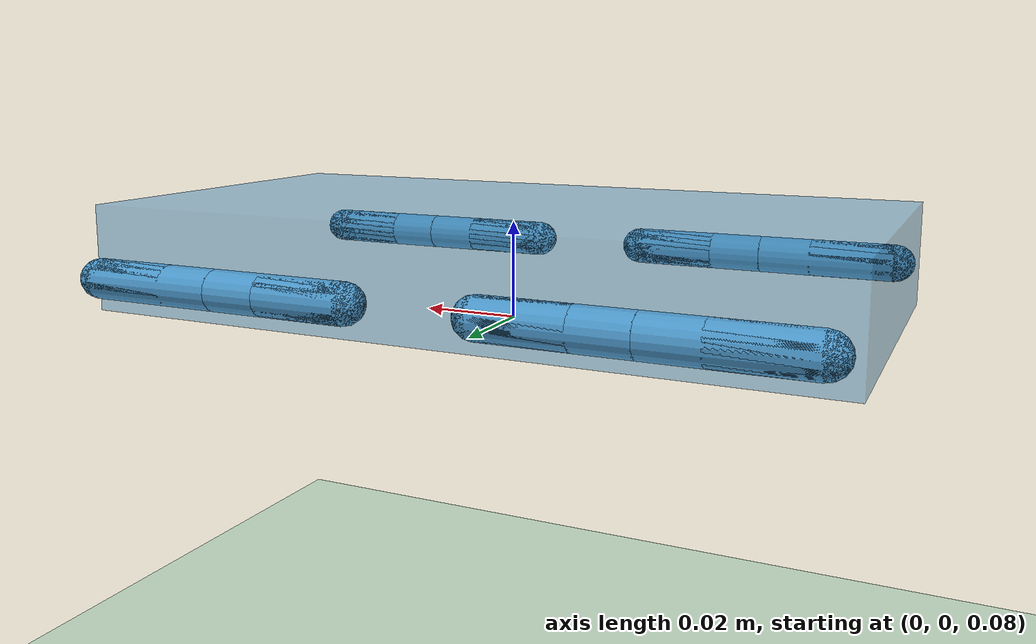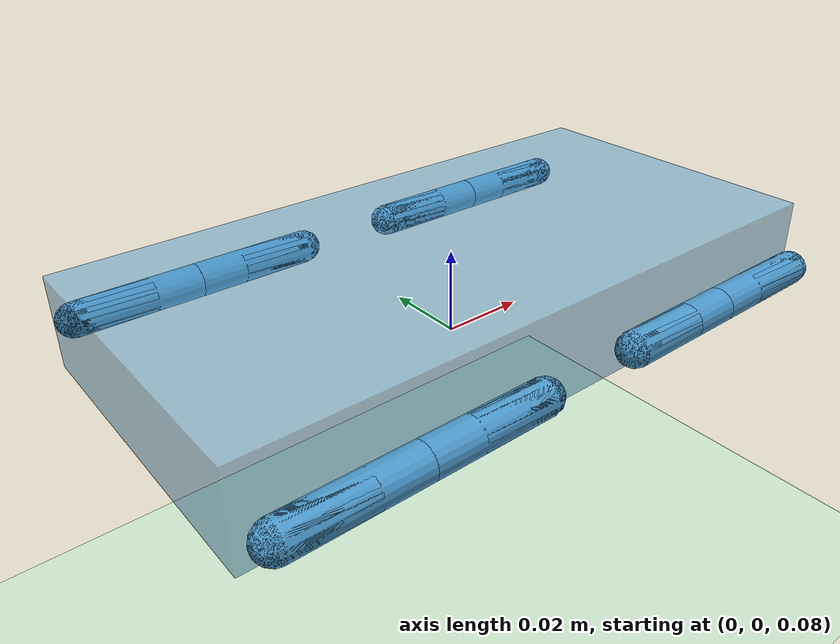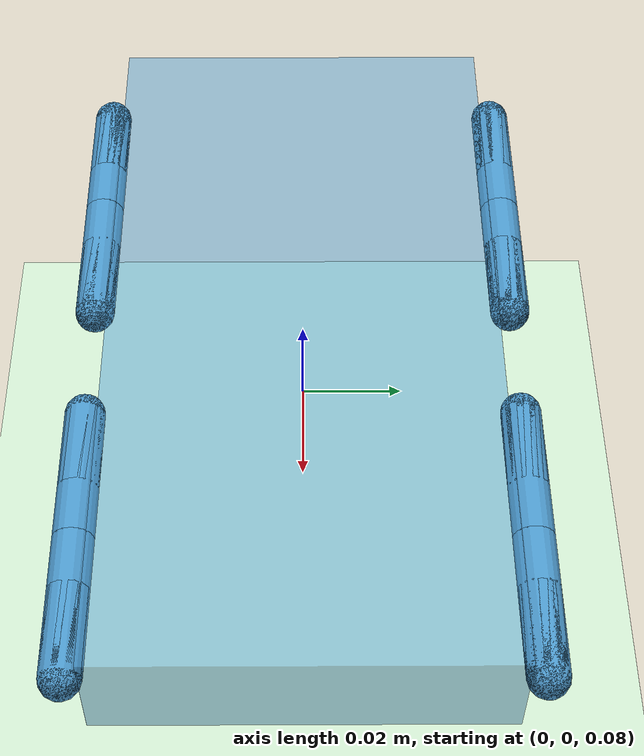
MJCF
<mujoco model="phonebot">
	<!-- enumeration of constant model parameters -->

	<!-- everything at 1x scale -->
	<compiler angle="radian" coordinate="local" inertiafromgeom="true"/>
	<option integrator="RK4" timestep="0.001618" gravity="0 0 -9.81" iterations='100000'/>

	<visual>
		<map znear="0.01"/>
	</visual>

	<default>
		<!-- armature = rotor inertia ; damping = F(damp) = c_d.v -->
		<joint armature="0.01" damping="0.01" limited="true"/>
		<geom conaffinity="0" condim="3" density="250.0" friction="1 0.5 0.5" margin="0.001" rgba="0.3 0.6 0.8 1.0"/>
	</default>

	<asset>
		<texture builtin="gradient" height="100" rgb1="1 1 1" rgb2="0 0 0" type="skybox" width="100"/>
		<texture builtin="flat" height="1278" mark="cross" markrgb="1 1 1" name="texgeom" random="0.01" rgb1="0.8 0.6 0.4" rgb2="0.8 0.6 0.4" type="cube" width="127"/>
		<texture builtin="checker" height="100" name="texplane" rgb1="0 0 0" rgb2="0.8 0.8 0.8" type="2d" width="100"/>
		<material name="MatPlane" reflectance="0.5" shininess="1" specular="1" texrepeat="60 60" texture="texplane"/>
		<material name="geom" texture="texgeom" texuniform="true"/>
	</asset>

	<worldbody>
		<light cutoff="100" diffuse="1 1 1" dir="-0 0 -1.3" directional="true" exponent="1" pos="0 0 1.3" specular=".1 .1 .1"/>
		<geom conaffinity="1" condim="3" material="MatPlane" name="floor" pos="0 0 0" rgba="0.8 0.9 0.8 1" size="10 10 10" type="plane"/>

		<body name="phone" pos="0 0 .1">
			<!-- root (dummy?) -->

			<!-- UNCOMMENT TO ADD GRAVITY -->
			<joint armature="0" damping="0" limited="false" margin="0.001" name="root" pos="0 0 0" type="free"/>

			<!-- main phone -->
			<geom name="phone_geom" pos="0 0 -0.00706" size="0.075 0.038175 0.010806" type="box" density="557.55" rgba="0.3 0.6 0.8 0.5"/>

			<!-- stoppers -->
			<geom name="fl_stop" pos="0.041418 0.0425 -0.010148" size="0.004" type="sphere"/>
			<geom name="fr_stop" pos="0.041418 -0.0425 -0.010148" size="0.004" type="sphere"/>
			<geom name="bl_stop" pos="-0.041418 0.0425 -0.010148" size="0.004" type="sphere"/>
			<geom name="br_stop" pos="-0.041418 -0.0425 -0.010148" size="0.004" type="sphere"/>

			<!-- legs -->
			<body name="fl_leg" pos="0.041418 0.0425 -0.010148">
				<body pos="-0.0110 0 0">
					<joint axis="0 -1 0" name="fl_ma" pos="0.0 0.0 0.0" range="-1.5707 1.5707" type="hinge"/>
					<geom fromto="0.0 0.0 0.0 -0.0175 0.0 0.0" name="fl_1a_geom" size="0.004" type="capsule"/>
					<body name="fl_sa" pos="-0.0175 0.0 0">
						<joint axis="0 -1 0" name="fl_ja" pos="0.0 0.0 0.0" limited="false" type="hinge"/>
						<geom fromto="0.0 0.0 0.0 0.0285 0.0 0.0" name="fl_2a_geom" size="0.004" type="capsule"/>
					</body>
				</body>
				<body pos="0.0110 0 0">
					<joint axis="0 1 0" name="fl_mb" pos="0.0 0.0 0.0" range="-1.5707 1.5707" type="hinge"/>
					<geom fromto="0.0 0.0 0.0 0.0175 0.0 0.0" name="fl_1b_geom" size="0.004" type="capsule"/>
					<body name="fl_sb" pos="0.0175 0.0 0">
						<joint axis="0 1 0" name="fl_jb" pos="0.0 0.0 0.0" limited="false" type="hinge"/>
						<geom fromto="0.0 0.0 0.0 -0.0285 0.0 0.0" name="fl_2b_geom" size="0.004" type="capsule"/>
					</body>
				</body>
			</body>

			<body name="fr_leg" pos="0.041418 -0.0425 -0.010148">
				<body pos="-0.0110 0 0">
					<joint axis="0 -1 0" name="fr_ma" pos="0.0 0.0 0.0" range="-1.5707 1.5707" type="hinge"/>
					<geom fromto="0.0 0.0 0.0 -0.0175 0.0 0.0" name="fr_1a_geom" size="0.004" type="capsule"/>
					<body name="fr_sa" pos="-0.0175 0.0 0">
						<joint axis="0 -1 0" name="fr_ja" pos="0.0 0.0 0.0" limited="false" type="hinge"/>
						<geom fromto="0.0 0.0 0.0 0.0285 0.0 0.0" name="fr_2a_geom" size="0.004" type="capsule"/>
					</body>
				</body>
				<body pos="0.0110 0 0">
					<joint axis="0 1 0" name="fr_mb" pos="0.0 0.0 0.0" range="-1.5707 1.5707" type="hinge"/>
					<geom fromto="0.0 0.0 0.0 0.0175 0.0 0.0" name="fr_1b_geom" size="0.004" type="capsule"/>
					<body name="fr_sb" pos="0.0175 0.0 0">
						<joint axis="0 1 0" name="fr_jb" pos="0.0 0.0 0.0" limited="false" type="hinge"/>
						<geom fromto="0.0 0.0 0.0 -0.0285 0.0 0.0" name="fr_2b_geom" size="0.004" type="capsule"/>
					</body>
				</body>
			</body>

			<body name="bl_leg" pos="-0.041418 0.0425 -0.010148">
				<body pos="-0.0110 0 0">
					<joint axis="0 -1 0" name="bl_ma" pos="0.0 0.0 0.0" range="-1.5707 1.5707" type="hinge"/>
					<geom fromto="0.0 0.0 0.0 -0.0175 0.0 0.0" name="bl_1a_geom" size="0.004" type="capsule"/>
					<body name="bl_sa" pos="-0.0175 0.0 0">
						<joint axis="0 -1 0" name="bl_ja" pos="0.0 0.0 0.0" limited="false" type="hinge"/>
						<geom fromto="0.0 0.0 0.0 0.0285 0.0 0.0" name="bl_2a_geom" size="0.004" type="capsule"/>
					</body>
				</body>
				<body pos="0.0110 0 0">
					<joint axis="0 1 0" name="bl_mb" pos="0.0 0.0 0.0" range="-1.5707 1.5707" type="hinge"/>
					<geom fromto="0.0 0.0 0.0 0.0175 0.0 0.0" name="bl_1b_geom" size="0.004" type="capsule"/>
					<body name="bl_sb" pos="0.0175 0.0 0">
						<joint axis="0 1 0" name="bl_jb" pos="0.0 0.0 0.0" limited="false" type="hinge"/>
						<geom fromto="0.0 0.0 0.0 -0.0285 0.0 0.0" name="bl_2b_geom" size="0.004" type="capsule"/>
					</body>
				</body>
			</body>

			<body name="br_leg" pos="-0.041418 -0.0425 -0.010148">
				<body pos="-0.0110 0 0">
					<joint axis="0 -1 0" name="br_ma" pos="0.0 0.0 0.0" range="-1.5707 1.5707" type="hinge"/>
					<geom fromto="0.0 0.0 0.0 -0.0175 0.0 0.0" name="br_1a_geom" size="0.004" type="capsule"/>
					<body name="br_sa" pos="-0.0175 0.0 0">
						<joint axis="0 -1 0" name="br_ja" pos="0.0 0.0 0.0" limited="false" type="hinge"/>
						<geom fromto="0.0 0.0 0.0 0.0285 0.0 0.0" name="br_2a_geom" size="0.004" type="capsule"/>
					</body>
				</body>
				<body pos="0.0110 0 0">
					<joint axis="0 1 0" name="br_mb" pos="0.0 0.0 0.0" range="-1.5707 1.5707" type="hinge"/>
					<geom fromto="0.0 0.0 0.0 0.0175 0.0 0.0" name="br_1b_geom" size="0.004" type="capsule"/>
					<body name="br_sb" pos="0.0175 0.0 0">
						<joint axis="0 1 0" name="br_jb" pos="0.0 0.0 0.0" limited="false" type="hinge"/>
						<geom fromto="0.0 0.0 0.0 -0.0285 0.0 0.0" name="br_2b_geom" size="0.004" type="capsule"/>
					</body>
				</body>
			</body>
		</body>
	</worldbody>

	<!-- define closed loop kinematic chain -->
    <equality>
		<connect name="fl_ep" body1="fl_sa" body2="fl_sb" anchor="0.0285 0 0" active="true" solimp="0.9 0.95 0.001" solref="0.001 1"/>
		<connect name="fr_ep" body1="fr_sa" body2="fr_sb" anchor="0.0285 0 0" active="true" solimp="0.9 0.95 0.001" solref="0.001 1"/>
		<connect name="bl_ep" body1="bl_sa" body2="bl_sb" anchor="0.0285 0 0" active="true" solimp="0.9 0.95 0.001" solref="0.001 1"/>
		<connect name="br_ep" body1="br_sa" body2="br_sb" anchor="0.0285 0 0" active="true" solimp="0.9 0.95 0.001" solref="0.001 1"/>
    </equality>

	<!-- define contacts -->
	<contact>
		<pair geom1="fl_stop" geom2="fl_2a_geom" margin="0.001"/>
		<pair geom1="fl_stop" geom2="fl_2b_geom" margin="0.001"/>
		<pair geom1="fr_stop" geom2="fr_2a_geom" margin="0.001"/>
		<pair geom1="fr_stop" geom2="fr_2b_geom" margin="0.001"/>
		<pair geom1="bl_stop" geom2="bl_2a_geom" margin="0.001"/>
		<pair geom1="bl_stop" geom2="bl_2b_geom" margin="0.001"/>
		<pair geom1="br_stop" geom2="br_2a_geom" margin="0.001"/>
		<pair geom1="br_stop" geom2="br_2b_geom" margin="0.001"/>
	</contact>
	<actuator>
		<motor ctrllimited="true" ctrlrange="-1.0 1.0" joint="fl_ma" gear="0.235"/> <!-- 2.4 kgf.cm == 0.235 N.m -->
		<motor ctrllimited="true" ctrlrange="-1.0 1.0" joint="fl_mb" gear="0.235"/>
		<motor ctrllimited="true" ctrlrange="-1.0 1.0" joint="fr_ma" gear="0.235"/>
		<motor ctrllimited="true" ctrlrange="-1.0 1.0" joint="fr_mb" gear="0.235"/>
		<motor ctrllimited="true" ctrlrange="-1.0 1.0" joint="bl_ma" gear="0.235"/>
		<motor ctrllimited="true" ctrlrange="-1.0 1.0" joint="bl_mb" gear="0.235"/>
		<motor ctrllimited="true" ctrlrange="-1.0 1.0" joint="br_ma" gear="0.235"/>
		<motor ctrllimited="true" ctrlrange="-1.0 1.0" joint="br_mb" gear="0.235"/>

	</actuator>
</mujoco>
